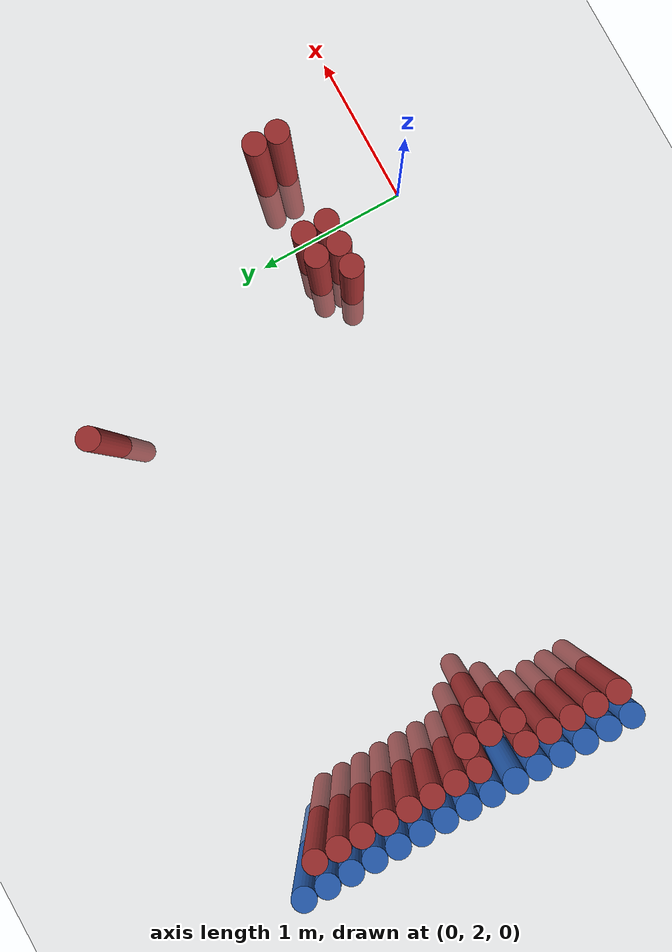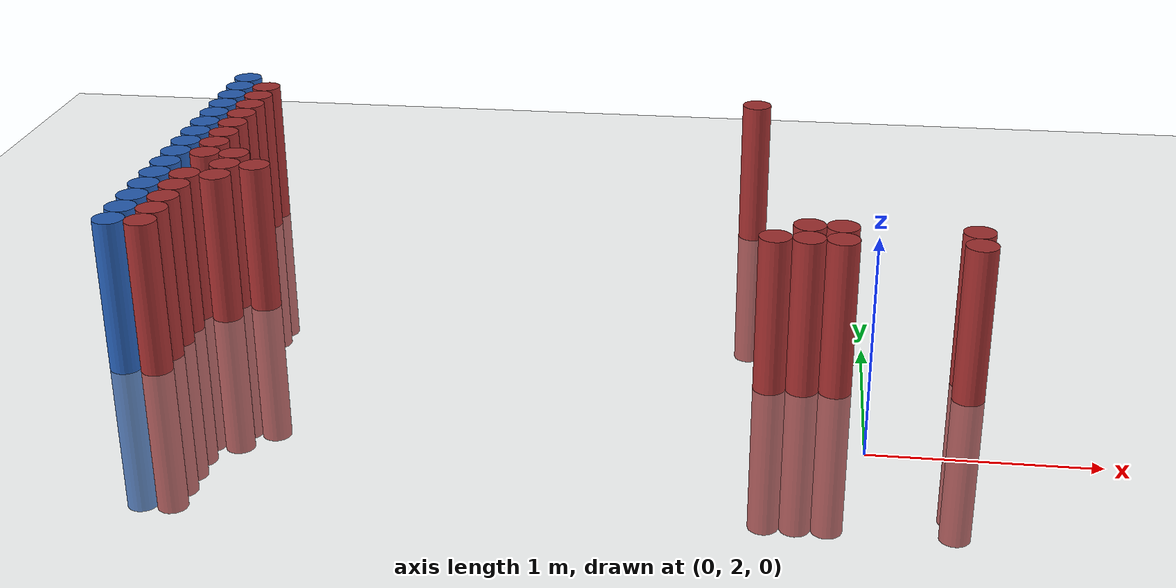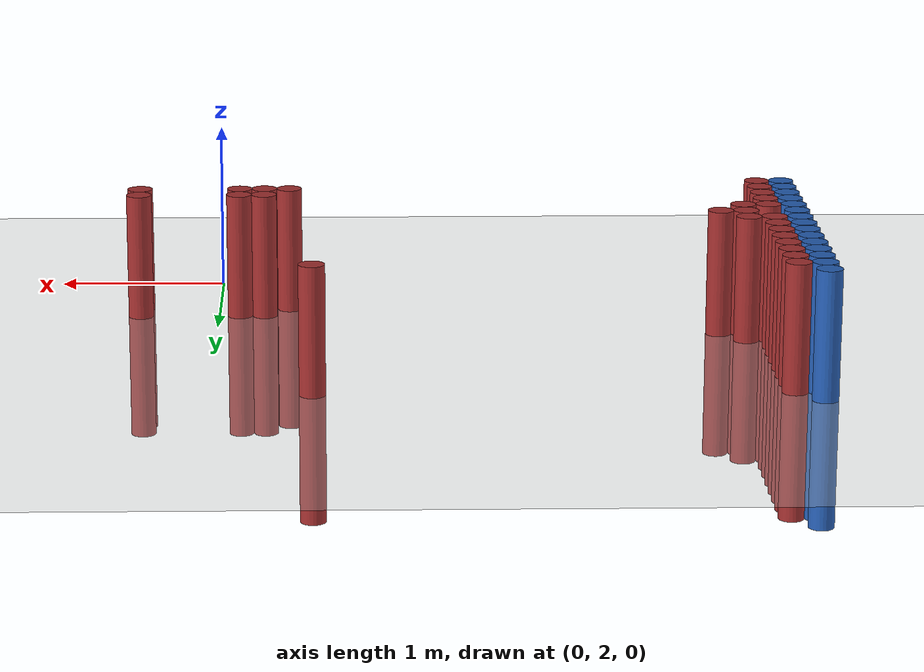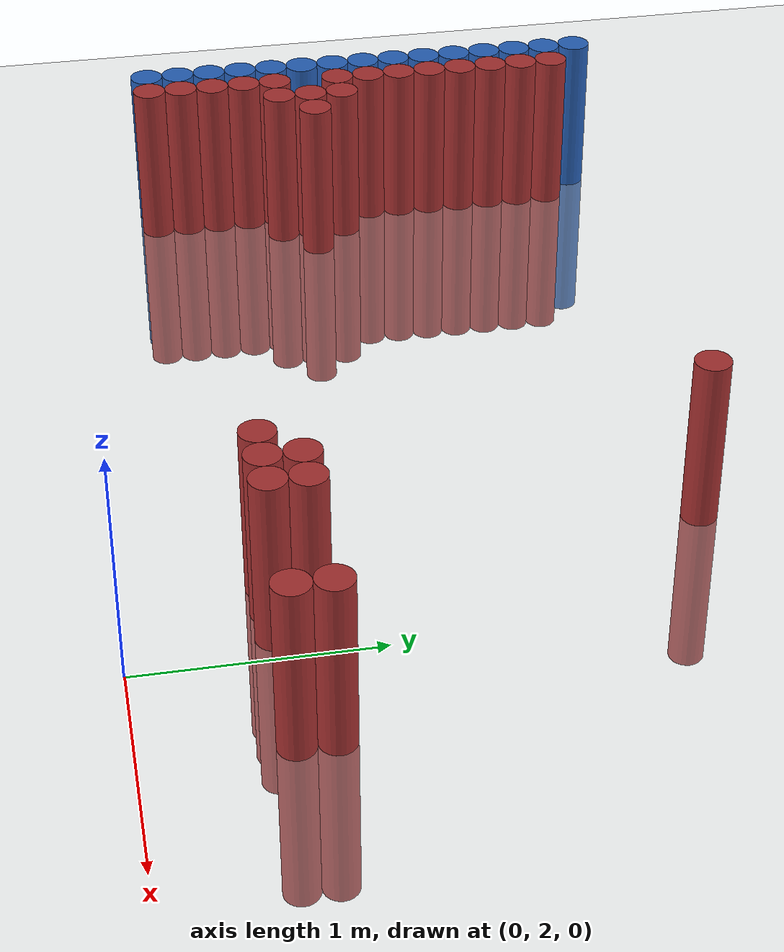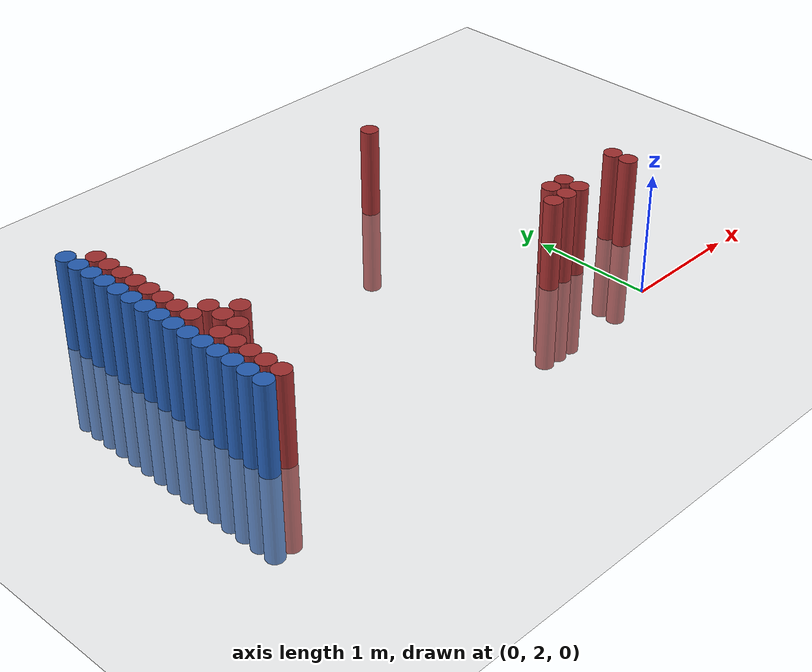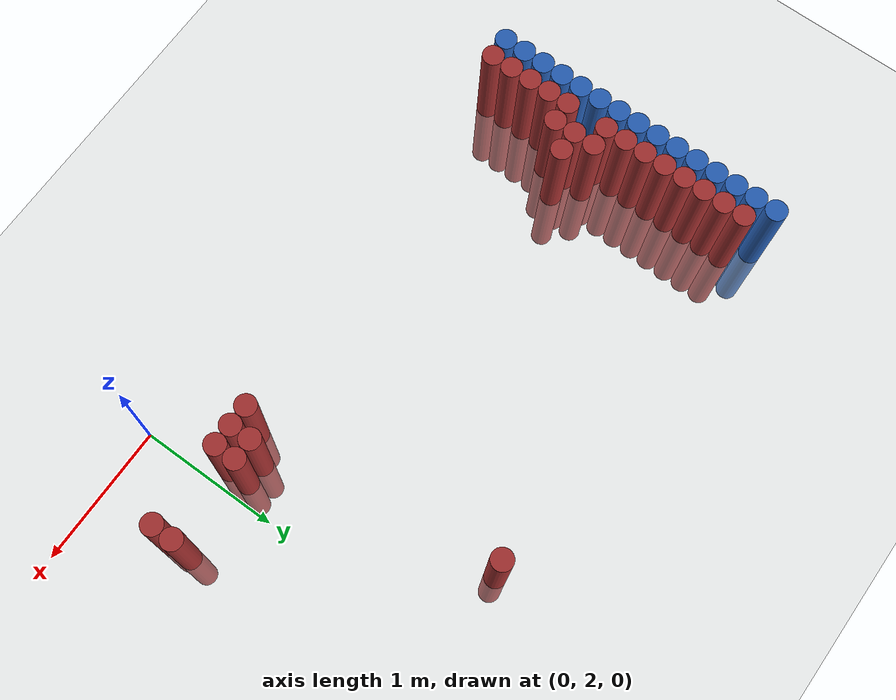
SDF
<sdf version="1.6">
 <world name="default">
  <model name="ground_plane">
   <static>1</static>
   <link name="link">
    <collision name="collision">
     <geometry><plane><normal>0 0 1</normal><size>100 100</size></plane></geometry>
     <surface><friction><ode><mu>100</mu><mu2>50</mu2></ode></friction></surface>
    </collision>
    <visual name="visual">
     <cast_shadows>0</cast_shadows>
     <geometry><plane><normal>0 0 1</normal><size>100 100</size></plane></geometry>
     <material>
      <script><uri>file://media/materials/scripts/gazebo.material</uri><name>Gazebo/Grey</name></script>
     </material>
    </visual>
   </link>
  </model>
  <model name="unit_cylinder_149">
   <static>1</static>
   <pose>-3.425000 2.575000 0.000000 0.000000 0.000000 0.000000</pose>
   <link name="link">
    <inertial>
     <mass>1</mass>
     <inertia><ixx>0.145833</ixx><ixy>0</ixy><ixz>0</ixz><iyy>0.145833</iyy><iyz>0</iyz><izz>0.125</izz></inertia>
    </inertial>
    <collision name="collision">
     <geometry><cylinder><radius>0.075000</radius><length>1.5</length></cylinder></geometry>
    </collision>
    <visual name="visual">
     <geometry><cylinder><radius>0.075000</radius><length>1.5</length></cylinder></geometry>
     <material>
      <ambient>0.152000 0.379000 0.720000 1</ambient>
      <diffuse>0.152000 0.379000 0.720000 1</diffuse>
     </material>
     <material>
      <script><name>Gazebo/Grey</name><uri>file://media/materials/scripts/gazebo.material</uri></script>
     </material>
    </visual>
   </link>
  </model>
  <model name="unit_cylinder_151">
   <static>1</static>
   <pose>-3.425000 2.725000 0.000000 0.000000 0.000000 0.000000</pose>
   <link name="link">
    <inertial>
     <mass>1</mass>
     <inertia><ixx>0.145833</ixx><ixy>0</ixy><ixz>0</ixz><iyy>0.145833</iyy><iyz>0</iyz><izz>0.125</izz></inertia>
    </inertial>
    <collision name="collision">
     <geometry><cylinder><radius>0.075000</radius><length>1.5</length></cylinder></geometry>
    </collision>
    <visual name="visual">
     <geometry><cylinder><radius>0.075000</radius><length>1.5</length></cylinder></geometry>
     <material>
      <ambient>0.152000 0.379000 0.720000 1</ambient>
      <diffuse>0.152000 0.379000 0.720000 1</diffuse>
     </material>
     <material>
      <script><name>Gazebo/Grey</name><uri>file://media/materials/scripts/gazebo.material</uri></script>
     </material>
    </visual>
   </link>
  </model>
  <model name="unit_cylinder_153">
   <static>1</static>
   <pose>-3.425000 2.875000 0.000000 0.000000 0.000000 0.000000</pose>
   <link name="link">
    <inertial>
     <mass>1</mass>
     <inertia><ixx>0.145833</ixx><ixy>0</ixy><ixz>0</ixz><iyy>0.145833</iyy><iyz>0</iyz><izz>0.125</izz></inertia>
    </inertial>
    <collision name="collision">
     <geometry><cylinder><radius>0.075000</radius><length>1.5</length></cylinder></geometry>
    </collision>
    <visual name="visual">
     <geometry><cylinder><radius>0.075000</radius><length>1.5</length></cylinder></geometry>
     <material>
      <ambient>0.152000 0.379000 0.720000 1</ambient>
      <diffuse>0.152000 0.379000 0.720000 1</diffuse>
     </material>
     <material>
      <script><name>Gazebo/Grey</name><uri>file://media/materials/scripts/gazebo.material</uri></script>
     </material>
    </visual>
   </link>
  </model>
  <model name="unit_cylinder_155">
   <static>1</static>
   <pose>-3.425000 3.025000 0.000000 0.000000 0.000000 0.000000</pose>
   <link name="link">
    <inertial>
     <mass>1</mass>
     <inertia><ixx>0.145833</ixx><ixy>0</ixy><ixz>0</ixz><iyy>0.145833</iyy><iyz>0</iyz><izz>0.125</izz></inertia>
    </inertial>
    <collision name="collision">
     <geometry><cylinder><radius>0.075000</radius><length>1.5</length></cylinder></geometry>
    </collision>
    <visual name="visual">
     <geometry><cylinder><radius>0.075000</radius><length>1.5</length></cylinder></geometry>
     <material>
      <ambient>0.152000 0.379000 0.720000 1</ambient>
      <diffuse>0.152000 0.379000 0.720000 1</diffuse>
     </material>
     <material>
      <script><name>Gazebo/Grey</name><uri>file://media/materials/scripts/gazebo.material</uri></script>
     </material>
    </visual>
   </link>
  </model>
  <model name="unit_cylinder_157">
   <static>1</static>
   <pose>-3.425000 3.175000 0.000000 0.000000 0.000000 0.000000</pose>
   <link name="link">
    <inertial>
     <mass>1</mass>
     <inertia><ixx>0.145833</ixx><ixy>0</ixy><ixz>0</ixz><iyy>0.145833</iyy><iyz>0</iyz><izz>0.125</izz></inertia>
    </inertial>
    <collision name="collision">
     <geometry><cylinder><radius>0.075000</radius><length>1.5</length></cylinder></geometry>
    </collision>
    <visual name="visual">
     <geometry><cylinder><radius>0.075000</radius><length>1.5</length></cylinder></geometry>
     <material>
      <ambient>0.152000 0.379000 0.720000 1</ambient>
      <diffuse>0.152000 0.379000 0.720000 1</diffuse>
     </material>
     <material>
      <script><name>Gazebo/Grey</name><uri>file://media/materials/scripts/gazebo.material</uri></script>
     </material>
    </visual>
   </link>
  </model>
  <model name="unit_cylinder_159">
   <static>1</static>
   <pose>-3.425000 3.325000 0.000000 0.000000 0.000000 0.000000</pose>
   <link name="link">
    <inertial>
     <mass>1</mass>
     <inertia><ixx>0.145833</ixx><ixy>0</ixy><ixz>0</ixz><iyy>0.145833</iyy><iyz>0</iyz><izz>0.125</izz></inertia>
    </inertial>
    <collision name="collision">
     <geometry><cylinder><radius>0.075000</radius><length>1.5</length></cylinder></geometry>
    </collision>
    <visual name="visual">
     <geometry><cylinder><radius>0.075000</radius><length>1.5</length></cylinder></geometry>
     <material>
      <ambient>0.152000 0.379000 0.720000 1</ambient>
      <diffuse>0.152000 0.379000 0.720000 1</diffuse>
     </material>
     <material>
      <script><name>Gazebo/Grey</name><uri>file://media/materials/scripts/gazebo.material</uri></script>
     </material>
    </visual>
   </link>
  </model>
  <model name="unit_cylinder_161">
   <static>1</static>
   <pose>-3.425000 3.475000 0.000000 0.000000 0.000000 0.000000</pose>
   <link name="link">
    <inertial>
     <mass>1</mass>
     <inertia><ixx>0.145833</ixx><ixy>0</ixy><ixz>0</ixz><iyy>0.145833</iyy><iyz>0</iyz><izz>0.125</izz></inertia>
    </inertial>
    <collision name="collision">
     <geometry><cylinder><radius>0.075000</radius><length>1.5</length></cylinder></geometry>
    </collision>
    <visual name="visual">
     <geometry><cylinder><radius>0.075000</radius><length>1.5</length></cylinder></geometry>
     <material>
      <ambient>0.152000 0.379000 0.720000 1</ambient>
      <diffuse>0.152000 0.379000 0.720000 1</diffuse>
     </material>
     <material>
      <script><name>Gazebo/Grey</name><uri>file://media/materials/scripts/gazebo.material</uri></script>
     </material>
    </visual>
   </link>
  </model>
  <model name="unit_cylinder_163">
   <static>1</static>
   <pose>-3.425000 3.625000 0.000000 0.000000 0.000000 0.000000</pose>
   <link name="link">
    <inertial>
     <mass>1</mass>
     <inertia><ixx>0.145833</ixx><ixy>0</ixy><ixz>0</ixz><iyy>0.145833</iyy><iyz>0</iyz><izz>0.125</izz></inertia>
    </inertial>
    <collision name="collision">
     <geometry><cylinder><radius>0.075000</radius><length>1.5</length></cylinder></geometry>
    </collision>
    <visual name="visual">
     <geometry><cylinder><radius>0.075000</radius><length>1.5</length></cylinder></geometry>
     <material>
      <ambient>0.152000 0.379000 0.720000 1</ambient>
      <diffuse>0.152000 0.379000 0.720000 1</diffuse>
     </material>
     <material>
      <script><name>Gazebo/Grey</name><uri>file://media/materials/scripts/gazebo.material</uri></script>
     </material>
    </visual>
   </link>
  </model>
  <model name="unit_cylinder_165">
   <static>1</static>
   <pose>-3.425000 3.775000 0.000000 0.000000 0.000000 0.000000</pose>
   <link name="link">
    <inertial>
     <mass>1</mass>
     <inertia><ixx>0.145833</ixx><ixy>0</ixy><ixz>0</ixz><iyy>0.145833</iyy><iyz>0</iyz><izz>0.125</izz></inertia>
    </inertial>
    <collision name="collision">
     <geometry><cylinder><radius>0.075000</radius><length>1.5</length></cylinder></geometry>
    </collision>
    <visual name="visual">
     <geometry><cylinder><radius>0.075000</radius><length>1.5</length></cylinder></geometry>
     <material>
      <ambient>0.152000 0.379000 0.720000 1</ambient>
      <diffuse>0.152000 0.379000 0.720000 1</diffuse>
     </material>
     <material>
      <script><name>Gazebo/Grey</name><uri>file://media/materials/scripts/gazebo.material</uri></script>
     </material>
    </visual>
   </link>
  </model>
  <model name="unit_cylinder_167">
   <static>1</static>
   <pose>-3.425000 3.925000 0.000000 0.000000 0.000000 0.000000</pose>
   <link name="link">
    <inertial>
     <mass>1</mass>
     <inertia><ixx>0.145833</ixx><ixy>0</ixy><ixz>0</ixz><iyy>0.145833</iyy><iyz>0</iyz><izz>0.125</izz></inertia>
    </inertial>
    <collision name="collision">
     <geometry><cylinder><radius>0.075000</radius><length>1.5</length></cylinder></geometry>
    </collision>
    <visual name="visual">
     <geometry><cylinder><radius>0.075000</radius><length>1.5</length></cylinder></geometry>
     <material>
      <ambient>0.152000 0.379000 0.720000 1</ambient>
      <diffuse>0.152000 0.379000 0.720000 1</diffuse>
     </material>
     <material>
      <script><name>Gazebo/Grey</name><uri>file://media/materials/scripts/gazebo.material</uri></script>
     </material>
    </visual>
   </link>
  </model>
  <model name="unit_cylinder_169">
   <static>1</static>
   <pose>-3.425000 4.075000 0.000000 0.000000 0.000000 0.000000</pose>
   <link name="link">
    <inertial>
     <mass>1</mass>
     <inertia><ixx>0.145833</ixx><ixy>0</ixy><ixz>0</ixz><iyy>0.145833</iyy><iyz>0</iyz><izz>0.125</izz></inertia>
    </inertial>
    <collision name="collision">
     <geometry><cylinder><radius>0.075000</radius><length>1.5</length></cylinder></geometry>
    </collision>
    <visual name="visual">
     <geometry><cylinder><radius>0.075000</radius><length>1.5</length></cylinder></geometry>
     <material>
      <ambient>0.152000 0.379000 0.720000 1</ambient>
      <diffuse>0.152000 0.379000 0.720000 1</diffuse>
     </material>
     <material>
      <script><name>Gazebo/Grey</name><uri>file://media/materials/scripts/gazebo.material</uri></script>
     </material>
    </visual>
   </link>
  </model>
  <model name="unit_cylinder_171">
   <static>1</static>
   <pose>-3.425000 4.225000 0.000000 0.000000 0.000000 0.000000</pose>
   <link name="link">
    <inertial>
     <mass>1</mass>
     <inertia><ixx>0.145833</ixx><ixy>0</ixy><ixz>0</ixz><iyy>0.145833</iyy><iyz>0</iyz><izz>0.125</izz></inertia>
    </inertial>
    <collision name="collision">
     <geometry><cylinder><radius>0.075000</radius><length>1.5</length></cylinder></geometry>
    </collision>
    <visual name="visual">
     <geometry><cylinder><radius>0.075000</radius><length>1.5</length></cylinder></geometry>
     <material>
      <ambient>0.152000 0.379000 0.720000 1</ambient>
      <diffuse>0.152000 0.379000 0.720000 1</diffuse>
     </material>
     <material>
      <script><name>Gazebo/Grey</name><uri>file://media/materials/scripts/gazebo.material</uri></script>
     </material>
    </visual>
   </link>
  </model>
  <model name="unit_cylinder_173">
   <static>1</static>
   <pose>-3.425000 4.375000 0.000000 0.000000 0.000000 0.000000</pose>
   <link name="link">
    <inertial>
     <mass>1</mass>
     <inertia><ixx>0.145833</ixx><ixy>0</ixy><ixz>0</ixz><iyy>0.145833</iyy><iyz>0</iyz><izz>0.125</izz></inertia>
    </inertial>
    <collision name="collision">
     <geometry><cylinder><radius>0.075000</radius><length>1.5</length></cylinder></geometry>
    </collision>
    <visual name="visual">
     <geometry><cylinder><radius>0.075000</radius><length>1.5</length></cylinder></geometry>
     <material>
      <ambient>0.152000 0.379000 0.720000 1</ambient>
      <diffuse>0.152000 0.379000 0.720000 1</diffuse>
     </material>
     <material>
      <script><name>Gazebo/Grey</name><uri>file://media/materials/scripts/gazebo.material</uri></script>
     </material>
    </visual>
   </link>
  </model>
  <model name="unit_cylinder_175">
   <static>1</static>
   <pose>-3.425000 4.525000 0.000000 0.000000 0.000000 0.000000</pose>
   <link name="link">
    <inertial>
     <mass>1</mass>
     <inertia><ixx>0.145833</ixx><ixy>0</ixy><ixz>0</ixz><iyy>0.145833</iyy><iyz>0</iyz><izz>0.125</izz></inertia>
    </inertial>
    <collision name="collision">
     <geometry><cylinder><radius>0.075000</radius><length>1.5</length></cylinder></geometry>
    </collision>
    <visual name="visual">
     <geometry><cylinder><radius>0.075000</radius><length>1.5</length></cylinder></geometry>
     <material>
      <ambient>0.152000 0.379000 0.720000 1</ambient>
      <diffuse>0.152000 0.379000 0.720000 1</diffuse>
     </material>
     <material>
      <script><name>Gazebo/Grey</name><uri>file://media/materials/scripts/gazebo.material</uri></script>
     </material>
    </visual>
   </link>
  </model>
  <model name="unit_cylinder_237">
   <static>1</static>
   <pose>-3.425000 2.425000 0.000000 0.000000 0.000000 0.000000</pose>
   <link name="link">
    <inertial>
     <mass>1</mass>
     <inertia><ixx>0.145833</ixx><ixy>0</ixy><ixz>0</ixz><iyy>0.145833</iyy><iyz>0</iyz><izz>0.125</izz></inertia>
    </inertial>
    <collision name="collision">
     <geometry><cylinder><radius>0.075000</radius><length>1.5</length></cylinder></geometry>
    </collision>
    <visual name="visual">
     <geometry><cylinder><radius>0.075000</radius><length>1.5</length></cylinder></geometry>
     <material>
      <ambient>0.152000 0.379000 0.720000 1</ambient>
      <diffuse>0.152000 0.379000 0.720000 1</diffuse>
     </material>
     <material>
      <script><name>Gazebo/Grey</name><uri>file://media/materials/scripts/gazebo.material</uri></script>
     </material>
    </visual>
   </link>
  </model>
  <model name="unit_cylinder_238">
   <static>1</static>
   <pose>-3.425000 2.575000 0.000000 0.000000 0.000000 0.000000</pose>
   <link name="link">
    <inertial>
     <mass>1</mass>
     <inertia><ixx>0.145833</ixx><ixy>0</ixy><ixz>0</ixz><iyy>0.145833</iyy><iyz>0</iyz><izz>0.125</izz></inertia>
    </inertial>
    <collision name="collision">
     <geometry><cylinder><radius>0.075000</radius><length>1.5</length></cylinder></geometry>
    </collision>
    <visual name="visual">
     <geometry><cylinder><radius>0.075000</radius><length>1.5</length></cylinder></geometry>
     <material>
      <ambient>0.152000 0.379000 0.720000 1</ambient>
      <diffuse>0.152000 0.379000 0.720000 1</diffuse>
     </material>
     <material>
      <script><name>Gazebo/Grey</name><uri>file://media/materials/scripts/gazebo.material</uri></script>
     </material>
    </visual>
   </link>
  </model>
  <model name="unit_cylinder_239">
   <static>1</static>
   <pose>-3.425000 2.725000 0.000000 0.000000 0.000000 0.000000</pose>
   <link name="link">
    <inertial>
     <mass>1</mass>
     <inertia><ixx>0.145833</ixx><ixy>0</ixy><ixz>0</ixz><iyy>0.145833</iyy><iyz>0</iyz><izz>0.125</izz></inertia>
    </inertial>
    <collision name="collision">
     <geometry><cylinder><radius>0.075000</radius><length>1.5</length></cylinder></geometry>
    </collision>
    <visual name="visual">
     <geometry><cylinder><radius>0.075000</radius><length>1.5</length></cylinder></geometry>
     <material>
      <ambient>0.152000 0.379000 0.720000 1</ambient>
      <diffuse>0.152000 0.379000 0.720000 1</diffuse>
     </material>
     <material>
      <script><name>Gazebo/Grey</name><uri>file://media/materials/scripts/gazebo.material</uri></script>
     </material>
    </visual>
   </link>
  </model>
  <model name="unit_cylinder_240">
   <static>1</static>
   <pose>-3.425000 2.875000 0.000000 0.000000 0.000000 0.000000</pose>
   <link name="link">
    <inertial>
     <mass>1</mass>
     <inertia><ixx>0.145833</ixx><ixy>0</ixy><ixz>0</ixz><iyy>0.145833</iyy><iyz>0</iyz><izz>0.125</izz></inertia>
    </inertial>
    <collision name="collision">
     <geometry><cylinder><radius>0.075000</radius><length>1.5</length></cylinder></geometry>
    </collision>
    <visual name="visual">
     <geometry><cylinder><radius>0.075000</radius><length>1.5</length></cylinder></geometry>
     <material>
      <ambient>0.152000 0.379000 0.720000 1</ambient>
      <diffuse>0.152000 0.379000 0.720000 1</diffuse>
     </material>
     <material>
      <script><name>Gazebo/Grey</name><uri>file://media/materials/scripts/gazebo.material</uri></script>
     </material>
    </visual>
   </link>
  </model>
  <model name="unit_cylinder_241">
   <static>1</static>
   <pose>-3.425000 3.025000 0.000000 0.000000 0.000000 0.000000</pose>
   <link name="link">
    <inertial>
     <mass>1</mass>
     <inertia><ixx>0.145833</ixx><ixy>0</ixy><ixz>0</ixz><iyy>0.145833</iyy><iyz>0</iyz><izz>0.125</izz></inertia>
    </inertial>
    <collision name="collision">
     <geometry><cylinder><radius>0.075000</radius><length>1.5</length></cylinder></geometry>
    </collision>
    <visual name="visual">
     <geometry><cylinder><radius>0.075000</radius><length>1.5</length></cylinder></geometry>
     <material>
      <ambient>0.152000 0.379000 0.720000 1</ambient>
      <diffuse>0.152000 0.379000 0.720000 1</diffuse>
     </material>
     <material>
      <script><name>Gazebo/Grey</name><uri>file://media/materials/scripts/gazebo.material</uri></script>
     </material>
    </visual>
   </link>
  </model>
  <model name="unit_cylinder_242">
   <static>1</static>
   <pose>-3.425000 3.175000 0.000000 0.000000 0.000000 0.000000</pose>
   <link name="link">
    <inertial>
     <mass>1</mass>
     <inertia><ixx>0.145833</ixx><ixy>0</ixy><ixz>0</ixz><iyy>0.145833</iyy><iyz>0</iyz><izz>0.125</izz></inertia>
    </inertial>
    <collision name="collision">
     <geometry><cylinder><radius>0.075000</radius><length>1.5</length></cylinder></geometry>
    </collision>
    <visual name="visual">
     <geometry><cylinder><radius>0.075000</radius><length>1.5</length></cylinder></geometry>
     <material>
      <ambient>0.152000 0.379000 0.720000 1</ambient>
      <diffuse>0.152000 0.379000 0.720000 1</diffuse>
     </material>
     <material>
      <script><name>Gazebo/Grey</name><uri>file://media/materials/scripts/gazebo.material</uri></script>
     </material>
    </visual>
   </link>
  </model>
  <model name="unit_cylinder_243">
   <static>1</static>
   <pose>-3.425000 3.325000 0.000000 0.000000 0.000000 0.000000</pose>
   <link name="link">
    <inertial>
     <mass>1</mass>
     <inertia><ixx>0.145833</ixx><ixy>0</ixy><ixz>0</ixz><iyy>0.145833</iyy><iyz>0</iyz><izz>0.125</izz></inertia>
    </inertial>
    <collision name="collision">
     <geometry><cylinder><radius>0.075000</radius><length>1.5</length></cylinder></geometry>
    </collision>
    <visual name="visual">
     <geometry><cylinder><radius>0.075000</radius><length>1.5</length></cylinder></geometry>
     <material>
      <ambient>0.152000 0.379000 0.720000 1</ambient>
      <diffuse>0.152000 0.379000 0.720000 1</diffuse>
     </material>
     <material>
      <script><name>Gazebo/Grey</name><uri>file://media/materials/scripts/gazebo.material</uri></script>
     </material>
    </visual>
   </link>
  </model>
  <model name="unit_cylinder_244">
   <static>1</static>
   <pose>-3.425000 3.475000 0.000000 0.000000 0.000000 0.000000</pose>
   <link name="link">
    <inertial>
     <mass>1</mass>
     <inertia><ixx>0.145833</ixx><ixy>0</ixy><ixz>0</ixz><iyy>0.145833</iyy><iyz>0</iyz><izz>0.125</izz></inertia>
    </inertial>
    <collision name="collision">
     <geometry><cylinder><radius>0.075000</radius><length>1.5</length></cylinder></geometry>
    </collision>
    <visual name="visual">
     <geometry><cylinder><radius>0.075000</radius><length>1.5</length></cylinder></geometry>
     <material>
      <ambient>0.152000 0.379000 0.720000 1</ambient>
      <diffuse>0.152000 0.379000 0.720000 1</diffuse>
     </material>
     <material>
      <script><name>Gazebo/Grey</name><uri>file://media/materials/scripts/gazebo.material</uri></script>
     </material>
    </visual>
   </link>
  </model>
  <model name="unit_cylinder_245">
   <static>1</static>
   <pose>-3.425000 3.625000 0.000000 0.000000 0.000000 0.000000</pose>
   <link name="link">
    <inertial>
     <mass>1</mass>
     <inertia><ixx>0.145833</ixx><ixy>0</ixy><ixz>0</ixz><iyy>0.145833</iyy><iyz>0</iyz><izz>0.125</izz></inertia>
    </inertial>
    <collision name="collision">
     <geometry><cylinder><radius>0.075000</radius><length>1.5</length></cylinder></geometry>
    </collision>
    <visual name="visual">
     <geometry><cylinder><radius>0.075000</radius><length>1.5</length></cylinder></geometry>
     <material>
      <ambient>0.152000 0.379000 0.720000 1</ambient>
      <diffuse>0.152000 0.379000 0.720000 1</diffuse>
     </material>
     <material>
      <script><name>Gazebo/Grey</name><uri>file://media/materials/scripts/gazebo.material</uri></script>
     </material>
    </visual>
   </link>
  </model>
  <model name="unit_cylinder_246">
   <static>1</static>
   <pose>-3.425000 3.775000 0.000000 0.000000 0.000000 0.000000</pose>
   <link name="link">
    <inertial>
     <mass>1</mass>
     <inertia><ixx>0.145833</ixx><ixy>0</ixy><ixz>0</ixz><iyy>0.145833</iyy><iyz>0</iyz><izz>0.125</izz></inertia>
    </inertial>
    <collision name="collision">
     <geometry><cylinder><radius>0.075000</radius><length>1.5</length></cylinder></geometry>
    </collision>
    <visual name="visual">
     <geometry><cylinder><radius>0.075000</radius><length>1.5</length></cylinder></geometry>
     <material>
      <ambient>0.152000 0.379000 0.720000 1</ambient>
      <diffuse>0.152000 0.379000 0.720000 1</diffuse>
     </material>
     <material>
      <script><name>Gazebo/Grey</name><uri>file://media/materials/scripts/gazebo.material</uri></script>
     </material>
    </visual>
   </link>
  </model>
  <model name="unit_cylinder_247">
   <static>1</static>
   <pose>-3.425000 3.925000 0.000000 0.000000 0.000000 0.000000</pose>
   <link name="link">
    <inertial>
     <mass>1</mass>
     <inertia><ixx>0.145833</ixx><ixy>0</ixy><ixz>0</ixz><iyy>0.145833</iyy><iyz>0</iyz><izz>0.125</izz></inertia>
    </inertial>
    <collision name="collision">
     <geometry><cylinder><radius>0.075000</radius><length>1.5</length></cylinder></geometry>
    </collision>
    <visual name="visual">
     <geometry><cylinder><radius>0.075000</radius><length>1.5</length></cylinder></geometry>
     <material>
      <ambient>0.152000 0.379000 0.720000 1</ambient>
      <diffuse>0.152000 0.379000 0.720000 1</diffuse>
     </material>
     <material>
      <script><name>Gazebo/Grey</name><uri>file://media/materials/scripts/gazebo.material</uri></script>
     </material>
    </visual>
   </link>
  </model>
  <model name="unit_cylinder_248">
   <static>1</static>
   <pose>-3.425000 4.075000 0.000000 0.000000 0.000000 0.000000</pose>
   <link name="link">
    <inertial>
     <mass>1</mass>
     <inertia><ixx>0.145833</ixx><ixy>0</ixy><ixz>0</ixz><iyy>0.145833</iyy><iyz>0</iyz><izz>0.125</izz></inertia>
    </inertial>
    <collision name="collision">
     <geometry><cylinder><radius>0.075000</radius><length>1.5</length></cylinder></geometry>
    </collision>
    <visual name="visual">
     <geometry><cylinder><radius>0.075000</radius><length>1.5</length></cylinder></geometry>
     <material>
      <ambient>0.152000 0.379000 0.720000 1</ambient>
      <diffuse>0.152000 0.379000 0.720000 1</diffuse>
     </material>
     <material>
      <script><name>Gazebo/Grey</name><uri>file://media/materials/scripts/gazebo.material</uri></script>
     </material>
    </visual>
   </link>
  </model>
  <model name="unit_cylinder_249">
   <static>1</static>
   <pose>-3.425000 4.225000 0.000000 0.000000 0.000000 0.000000</pose>
   <link name="link">
    <inertial>
     <mass>1</mass>
     <inertia><ixx>0.145833</ixx><ixy>0</ixy><ixz>0</ixz><iyy>0.145833</iyy><iyz>0</iyz><izz>0.125</izz></inertia>
    </inertial>
    <collision name="collision">
     <geometry><cylinder><radius>0.075000</radius><length>1.5</length></cylinder></geometry>
    </collision>
    <visual name="visual">
     <geometry><cylinder><radius>0.075000</radius><length>1.5</length></cylinder></geometry>
     <material>
      <ambient>0.152000 0.379000 0.720000 1</ambient>
      <diffuse>0.152000 0.379000 0.720000 1</diffuse>
     </material>
     <material>
      <script><name>Gazebo/Grey</name><uri>file://media/materials/scripts/gazebo.material</uri></script>
     </material>
    </visual>
   </link>
  </model>
  <model name="unit_cylinder_250">
   <static>1</static>
   <pose>-3.425000 4.375000 0.000000 0.000000 0.000000 0.000000</pose>
   <link name="link">
    <inertial>
     <mass>1</mass>
     <inertia><ixx>0.145833</ixx><ixy>0</ixy><ixz>0</ixz><iyy>0.145833</iyy><iyz>0</iyz><izz>0.125</izz></inertia>
    </inertial>
    <collision name="collision">
     <geometry><cylinder><radius>0.075000</radius><length>1.5</length></cylinder></geometry>
    </collision>
    <visual name="visual">
     <geometry><cylinder><radius>0.075000</radius><length>1.5</length></cylinder></geometry>
     <material>
      <ambient>0.152000 0.379000 0.720000 1</ambient>
      <diffuse>0.152000 0.379000 0.720000 1</diffuse>
     </material>
     <material>
      <script><name>Gazebo/Grey</name><uri>file://media/materials/scripts/gazebo.material</uri></script>
     </material>
    </visual>
   </link>
  </model>
  <model name="unit_cylinder_270">
   <static>1</static>
   <pose>-3.275000 2.425000 0.000000 0.000000 0.000000 0.000000</pose>
   <link name="link">
    <inertial>
     <mass>1</mass>
     <inertia><ixx>0.145833</ixx><ixy>0</ixy><ixz>0</ixz><iyy>0.145833</iyy><iyz>0</iyz><izz>0.125</izz></inertia>
    </inertial>
    <collision name="collision">
     <geometry><cylinder><radius>0.075000</radius><length>1.5</length></cylinder></geometry>
    </collision>
    <visual name="visual">
     <geometry><cylinder><radius>0.075000</radius><length>1.5</length></cylinder></geometry>
     <material>
      <ambient>0.648000 0.192000 0.192000 1</ambient>
      <diffuse>0.648000 0.192000 0.192000 1</diffuse>
     </material>
     <material>
      <script><name>Gazebo/Grey</name><uri>file://media/materials/scripts/gazebo.material</uri></script>
     </material>
    </visual>
   </link>
  </model>
  <model name="unit_cylinder_271">
   <static>1</static>
   <pose>-3.275000 2.575000 0.000000 0.000000 0.000000 0.000000</pose>
   <link name="link">
    <inertial>
     <mass>1</mass>
     <inertia><ixx>0.145833</ixx><ixy>0</ixy><ixz>0</ixz><iyy>0.145833</iyy><iyz>0</iyz><izz>0.125</izz></inertia>
    </inertial>
    <collision name="collision">
     <geometry><cylinder><radius>0.075000</radius><length>1.5</length></cylinder></geometry>
    </collision>
    <visual name="visual">
     <geometry><cylinder><radius>0.075000</radius><length>1.5</length></cylinder></geometry>
     <material>
      <ambient>0.648000 0.192000 0.192000 1</ambient>
      <diffuse>0.648000 0.192000 0.192000 1</diffuse>
     </material>
     <material>
      <script><name>Gazebo/Grey</name><uri>file://media/materials/scripts/gazebo.material</uri></script>
     </material>
    </visual>
   </link>
  </model>
  <model name="unit_cylinder_272">
   <static>1</static>
   <pose>-3.275000 2.725000 0.000000 0.000000 0.000000 0.000000</pose>
   <link name="link">
    <inertial>
     <mass>1</mass>
     <inertia><ixx>0.145833</ixx><ixy>0</ixy><ixz>0</ixz><iyy>0.145833</iyy><iyz>0</iyz><izz>0.125</izz></inertia>
    </inertial>
    <collision name="collision">
     <geometry><cylinder><radius>0.075000</radius><length>1.5</length></cylinder></geometry>
    </collision>
    <visual name="visual">
     <geometry><cylinder><radius>0.075000</radius><length>1.5</length></cylinder></geometry>
     <material>
      <ambient>0.648000 0.192000 0.192000 1</ambient>
      <diffuse>0.648000 0.192000 0.192000 1</diffuse>
     </material>
     <material>
      <script><name>Gazebo/Grey</name><uri>file://media/materials/scripts/gazebo.material</uri></script>
     </material>
    </visual>
   </link>
  </model>
  <model name="unit_cylinder_273">
   <static>1</static>
   <pose>-3.275000 2.875000 0.000000 0.000000 0.000000 0.000000</pose>
   <link name="link">
    <inertial>
     <mass>1</mass>
     <inertia><ixx>0.145833</ixx><ixy>0</ixy><ixz>0</ixz><iyy>0.145833</iyy><iyz>0</iyz><izz>0.125</izz></inertia>
    </inertial>
    <collision name="collision">
     <geometry><cylinder><radius>0.075000</radius><length>1.5</length></cylinder></geometry>
    </collision>
    <visual name="visual">
     <geometry><cylinder><radius>0.075000</radius><length>1.5</length></cylinder></geometry>
     <material>
      <ambient>0.648000 0.192000 0.192000 1</ambient>
      <diffuse>0.648000 0.192000 0.192000 1</diffuse>
     </material>
     <material>
      <script><name>Gazebo/Grey</name><uri>file://media/materials/scripts/gazebo.material</uri></script>
     </material>
    </visual>
   </link>
  </model>
  <model name="unit_cylinder_274">
   <static>1</static>
   <pose>-3.275000 3.025000 0.000000 0.000000 0.000000 0.000000</pose>
   <link name="link">
    <inertial>
     <mass>1</mass>
     <inertia><ixx>0.145833</ixx><ixy>0</ixy><ixz>0</ixz><iyy>0.145833</iyy><iyz>0</iyz><izz>0.125</izz></inertia>
    </inertial>
    <collision name="collision">
     <geometry><cylinder><radius>0.075000</radius><length>1.5</length></cylinder></geometry>
    </collision>
    <visual name="visual">
     <geometry><cylinder><radius>0.075000</radius><length>1.5</length></cylinder></geometry>
     <material>
      <ambient>0.648000 0.192000 0.192000 1</ambient>
      <diffuse>0.648000 0.192000 0.192000 1</diffuse>
     </material>
     <material>
      <script><name>Gazebo/Grey</name><uri>file://media/materials/scripts/gazebo.material</uri></script>
     </material>
    </visual>
   </link>
  </model>
  <model name="unit_cylinder_275">
   <static>1</static>
   <pose>-3.275000 3.325000 0.000000 0.000000 0.000000 0.000000</pose>
   <link name="link">
    <inertial>
     <mass>1</mass>
     <inertia><ixx>0.145833</ixx><ixy>0</ixy><ixz>0</ixz><iyy>0.145833</iyy><iyz>0</iyz><izz>0.125</izz></inertia>
    </inertial>
    <collision name="collision">
     <geometry><cylinder><radius>0.075000</radius><length>1.5</length></cylinder></geometry>
    </collision>
    <visual name="visual">
     <geometry><cylinder><radius>0.075000</radius><length>1.5</length></cylinder></geometry>
     <material>
      <ambient>0.648000 0.192000 0.192000 1</ambient>
      <diffuse>0.648000 0.192000 0.192000 1</diffuse>
     </material>
     <material>
      <script><name>Gazebo/Grey</name><uri>file://media/materials/scripts/gazebo.material</uri></script>
     </material>
    </visual>
   </link>
  </model>
  <model name="unit_cylinder_276">
   <static>1</static>
   <pose>-3.275000 3.475000 0.000000 0.000000 0.000000 0.000000</pose>
   <link name="link">
    <inertial>
     <mass>1</mass>
     <inertia><ixx>0.145833</ixx><ixy>0</ixy><ixz>0</ixz><iyy>0.145833</iyy><iyz>0</iyz><izz>0.125</izz></inertia>
    </inertial>
    <collision name="collision">
     <geometry><cylinder><radius>0.075000</radius><length>1.5</length></cylinder></geometry>
    </collision>
    <visual name="visual">
     <geometry><cylinder><radius>0.075000</radius><length>1.5</length></cylinder></geometry>
     <material>
      <ambient>0.648000 0.192000 0.192000 1</ambient>
      <diffuse>0.648000 0.192000 0.192000 1</diffuse>
     </material>
     <material>
      <script><name>Gazebo/Grey</name><uri>file://media/materials/scripts/gazebo.material</uri></script>
     </material>
    </visual>
   </link>
  </model>
  <model name="unit_cylinder_277">
   <static>1</static>
   <pose>-3.275000 3.625000 0.000000 0.000000 0.000000 0.000000</pose>
   <link name="link">
    <inertial>
     <mass>1</mass>
     <inertia><ixx>0.145833</ixx><ixy>0</ixy><ixz>0</ixz><iyy>0.145833</iyy><iyz>0</iyz><izz>0.125</izz></inertia>
    </inertial>
    <collision name="collision">
     <geometry><cylinder><radius>0.075000</radius><length>1.5</length></cylinder></geometry>
    </collision>
    <visual name="visual">
     <geometry><cylinder><radius>0.075000</radius><length>1.5</length></cylinder></geometry>
     <material>
      <ambient>0.648000 0.192000 0.192000 1</ambient>
      <diffuse>0.648000 0.192000 0.192000 1</diffuse>
     </material>
     <material>
      <script><name>Gazebo/Grey</name><uri>file://media/materials/scripts/gazebo.material</uri></script>
     </material>
    </visual>
   </link>
  </model>
  <model name="unit_cylinder_278">
   <static>1</static>
   <pose>-3.275000 3.775000 0.000000 0.000000 0.000000 0.000000</pose>
   <link name="link">
    <inertial>
     <mass>1</mass>
     <inertia><ixx>0.145833</ixx><ixy>0</ixy><ixz>0</ixz><iyy>0.145833</iyy><iyz>0</iyz><izz>0.125</izz></inertia>
    </inertial>
    <collision name="collision">
     <geometry><cylinder><radius>0.075000</radius><length>1.5</length></cylinder></geometry>
    </collision>
    <visual name="visual">
     <geometry><cylinder><radius>0.075000</radius><length>1.5</length></cylinder></geometry>
     <material>
      <ambient>0.648000 0.192000 0.192000 1</ambient>
      <diffuse>0.648000 0.192000 0.192000 1</diffuse>
     </material>
     <material>
      <script><name>Gazebo/Grey</name><uri>file://media/materials/scripts/gazebo.material</uri></script>
     </material>
    </visual>
   </link>
  </model>
  <model name="unit_cylinder_279">
   <static>1</static>
   <pose>-3.275000 3.925000 0.000000 0.000000 0.000000 0.000000</pose>
   <link name="link">
    <inertial>
     <mass>1</mass>
     <inertia><ixx>0.145833</ixx><ixy>0</ixy><ixz>0</ixz><iyy>0.145833</iyy><iyz>0</iyz><izz>0.125</izz></inertia>
    </inertial>
    <collision name="collision">
     <geometry><cylinder><radius>0.075000</radius><length>1.5</length></cylinder></geometry>
    </collision>
    <visual name="visual">
     <geometry><cylinder><radius>0.075000</radius><length>1.5</length></cylinder></geometry>
     <material>
      <ambient>0.648000 0.192000 0.192000 1</ambient>
      <diffuse>0.648000 0.192000 0.192000 1</diffuse>
     </material>
     <material>
      <script><name>Gazebo/Grey</name><uri>file://media/materials/scripts/gazebo.material</uri></script>
     </material>
    </visual>
   </link>
  </model>
  <model name="unit_cylinder_280">
   <static>1</static>
   <pose>-3.275000 4.075000 0.000000 0.000000 0.000000 0.000000</pose>
   <link name="link">
    <inertial>
     <mass>1</mass>
     <inertia><ixx>0.145833</ixx><ixy>0</ixy><ixz>0</ixz><iyy>0.145833</iyy><iyz>0</iyz><izz>0.125</izz></inertia>
    </inertial>
    <collision name="collision">
     <geometry><cylinder><radius>0.075000</radius><length>1.5</length></cylinder></geometry>
    </collision>
    <visual name="visual">
     <geometry><cylinder><radius>0.075000</radius><length>1.5</length></cylinder></geometry>
     <material>
      <ambient>0.648000 0.192000 0.192000 1</ambient>
      <diffuse>0.648000 0.192000 0.192000 1</diffuse>
     </material>
     <material>
      <script><name>Gazebo/Grey</name><uri>file://media/materials/scripts/gazebo.material</uri></script>
     </material>
    </visual>
   </link>
  </model>
  <model name="unit_cylinder_281">
   <static>1</static>
   <pose>-3.275000 4.225000 0.000000 0.000000 0.000000 0.000000</pose>
   <link name="link">
    <inertial>
     <mass>1</mass>
     <inertia><ixx>0.145833</ixx><ixy>0</ixy><ixz>0</ixz><iyy>0.145833</iyy><iyz>0</iyz><izz>0.125</izz></inertia>
    </inertial>
    <collision name="collision">
     <geometry><cylinder><radius>0.075000</radius><length>1.5</length></cylinder></geometry>
    </collision>
    <visual name="visual">
     <geometry><cylinder><radius>0.075000</radius><length>1.5</length></cylinder></geometry>
     <material>
      <ambient>0.648000 0.192000 0.192000 1</ambient>
      <diffuse>0.648000 0.192000 0.192000 1</diffuse>
     </material>
     <material>
      <script><name>Gazebo/Grey</name><uri>file://media/materials/scripts/gazebo.material</uri></script>
     </material>
    </visual>
   </link>
  </model>
  <model name="unit_cylinder_282">
   <static>1</static>
   <pose>-3.275000 4.375000 0.000000 0.000000 0.000000 0.000000</pose>
   <link name="link">
    <inertial>
     <mass>1</mass>
     <inertia><ixx>0.145833</ixx><ixy>0</ixy><ixz>0</ixz><iyy>0.145833</iyy><iyz>0</iyz><izz>0.125</izz></inertia>
    </inertial>
    <collision name="collision">
     <geometry><cylinder><radius>0.075000</radius><length>1.5</length></cylinder></geometry>
    </collision>
    <visual name="visual">
     <geometry><cylinder><radius>0.075000</radius><length>1.5</length></cylinder></geometry>
     <material>
      <ambient>0.648000 0.192000 0.192000 1</ambient>
      <diffuse>0.648000 0.192000 0.192000 1</diffuse>
     </material>
     <material>
      <script><name>Gazebo/Grey</name><uri>file://media/materials/scripts/gazebo.material</uri></script>
     </material>
    </visual>
   </link>
  </model>
  <model name="unit_cylinder_292">
   <static>1</static>
   <pose>-3.125000 3.025000 0.000000 0.000000 0.000000 0.000000</pose>
   <link name="link">
    <inertial>
     <mass>1</mass>
     <inertia><ixx>0.145833</ixx><ixy>0</ixy><ixz>0</ixz><iyy>0.145833</iyy><iyz>0</iyz><izz>0.125</izz></inertia>
    </inertial>
    <collision name="collision">
     <geometry><cylinder><radius>0.075000</radius><length>1.5</length></cylinder></geometry>
    </collision>
    <visual name="visual">
     <geometry><cylinder><radius>0.075000</radius><length>1.5</length></cylinder></geometry>
     <material>
      <ambient>0.648000 0.192000 0.192000 1</ambient>
      <diffuse>0.648000 0.192000 0.192000 1</diffuse>
     </material>
     <material>
      <script><name>Gazebo/Grey</name><uri>file://media/materials/scripts/gazebo.material</uri></script>
     </material>
    </visual>
   </link>
  </model>
  <model name="unit_cylinder_293">
   <static>1</static>
   <pose>-3.125000 3.175000 0.000000 0.000000 0.000000 0.000000</pose>
   <link name="link">
    <inertial>
     <mass>1</mass>
     <inertia><ixx>0.145833</ixx><ixy>0</ixy><ixz>0</ixz><iyy>0.145833</iyy><iyz>0</iyz><izz>0.125</izz></inertia>
    </inertial>
    <collision name="collision">
     <geometry><cylinder><radius>0.075000</radius><length>1.5</length></cylinder></geometry>
    </collision>
    <visual name="visual">
     <geometry><cylinder><radius>0.075000</radius><length>1.5</length></cylinder></geometry>
     <material>
      <ambient>0.648000 0.192000 0.192000 1</ambient>
      <diffuse>0.648000 0.192000 0.192000 1</diffuse>
     </material>
     <material>
      <script><name>Gazebo/Grey</name><uri>file://media/materials/scripts/gazebo.material</uri></script>
     </material>
    </visual>
   </link>
  </model>
  <model name="unit_cylinder_294">
   <static>1</static>
   <pose>-3.125000 3.325000 0.000000 0.000000 0.000000 0.000000</pose>
   <link name="link">
    <inertial>
     <mass>1</mass>
     <inertia><ixx>0.145833</ixx><ixy>0</ixy><ixz>0</ixz><iyy>0.145833</iyy><iyz>0</iyz><izz>0.125</izz></inertia>
    </inertial>
    <collision name="collision">
     <geometry><cylinder><radius>0.075000</radius><length>1.5</length></cylinder></geometry>
    </collision>
    <visual name="visual">
     <geometry><cylinder><radius>0.075000</radius><length>1.5</length></cylinder></geometry>
     <material>
      <ambient>0.648000 0.192000 0.192000 1</ambient>
      <diffuse>0.648000 0.192000 0.192000 1</diffuse>
     </material>
     <material>
      <script><name>Gazebo/Grey</name><uri>file://media/materials/scripts/gazebo.material</uri></script>
     </material>
    </visual>
   </link>
  </model>
  <model name="unit_cylinder_297">
   <static>1</static>
   <pose>-2.975000 3.175000 0.000000 0.000000 0.000000 0.000000</pose>
   <link name="link">
    <inertial>
     <mass>1</mass>
     <inertia><ixx>0.145833</ixx><ixy>0</ixy><ixz>0</ixz><iyy>0.145833</iyy><iyz>0</iyz><izz>0.125</izz></inertia>
    </inertial>
    <collision name="collision">
     <geometry><cylinder><radius>0.075000</radius><length>1.5</length></cylinder></geometry>
    </collision>
    <visual name="visual">
     <geometry><cylinder><radius>0.075000</radius><length>1.5</length></cylinder></geometry>
     <material>
      <ambient>0.648000 0.192000 0.192000 1</ambient>
      <diffuse>0.648000 0.192000 0.192000 1</diffuse>
     </material>
     <material>
      <script><name>Gazebo/Grey</name><uri>file://media/materials/scripts/gazebo.material</uri></script>
     </material>
    </visual>
   </link>
  </model>
  <model name="unit_cylinder_369">
   <static>1</static>
   <pose>-0.575000 4.375000 0.000000 0.000000 0.000000 0.000000</pose>
   <link name="link">
    <inertial>
     <mass>1</mass>
     <inertia><ixx>0.145833</ixx><ixy>0</ixy><ixz>0</ixz><iyy>0.145833</iyy><iyz>0</iyz><izz>0.125</izz></inertia>
    </inertial>
    <collision name="collision">
     <geometry><cylinder><radius>0.075000</radius><length>1.5</length></cylinder></geometry>
    </collision>
    <visual name="visual">
     <geometry><cylinder><radius>0.075000</radius><length>1.5</length></cylinder></geometry>
     <material>
      <ambient>0.648000 0.192000 0.192000 1</ambient>
      <diffuse>0.648000 0.192000 0.192000 1</diffuse>
     </material>
     <material>
      <script><name>Gazebo/Grey</name><uri>file://media/materials/scripts/gazebo.material</uri></script>
     </material>
    </visual>
   </link>
  </model>
  <model name="unit_cylinder_378">
   <static>1</static>
   <pose>-0.425000 2.575000 0.000000 0.000000 0.000000 0.000000</pose>
   <link name="link">
    <inertial>
     <mass>1</mass>
     <inertia><ixx>0.145833</ixx><ixy>0</ixy><ixz>0</ixz><iyy>0.145833</iyy><iyz>0</iyz><izz>0.125</izz></inertia>
    </inertial>
    <collision name="collision">
     <geometry><cylinder><radius>0.075000</radius><length>1.5</length></cylinder></geometry>
    </collision>
    <visual name="visual">
     <geometry><cylinder><radius>0.075000</radius><length>1.5</length></cylinder></geometry>
     <material>
      <ambient>0.648000 0.192000 0.192000 1</ambient>
      <diffuse>0.648000 0.192000 0.192000 1</diffuse>
     </material>
     <material>
      <script><name>Gazebo/Grey</name><uri>file://media/materials/scripts/gazebo.material</uri></script>
     </material>
    </visual>
   </link>
  </model>
  <model name="unit_cylinder_386">
   <static>1</static>
   <pose>-0.275000 2.575000 0.000000 0.000000 0.000000 0.000000</pose>
   <link name="link">
    <inertial>
     <mass>1</mass>
     <inertia><ixx>0.145833</ixx><ixy>0</ixy><ixz>0</ixz><iyy>0.145833</iyy><iyz>0</iyz><izz>0.125</izz></inertia>
    </inertial>
    <collision name="collision">
     <geometry><cylinder><radius>0.075000</radius><length>1.5</length></cylinder></geometry>
    </collision>
    <visual name="visual">
     <geometry><cylinder><radius>0.075000</radius><length>1.5</length></cylinder></geometry>
     <material>
      <ambient>0.648000 0.192000 0.192000 1</ambient>
      <diffuse>0.648000 0.192000 0.192000 1</diffuse>
     </material>
     <material>
      <script><name>Gazebo/Grey</name><uri>file://media/materials/scripts/gazebo.material</uri></script>
     </material>
    </visual>
   </link>
  </model>
  <model name="unit_cylinder_387">
   <static>1</static>
   <pose>-0.275000 2.725000 0.000000 0.000000 0.000000 0.000000</pose>
   <link name="link">
    <inertial>
     <mass>1</mass>
     <inertia><ixx>0.145833</ixx><ixy>0</ixy><ixz>0</ixz><iyy>0.145833</iyy><iyz>0</iyz><izz>0.125</izz></inertia>
    </inertial>
    <collision name="collision">
     <geometry><cylinder><radius>0.075000</radius><length>1.5</length></cylinder></geometry>
    </collision>
    <visual name="visual">
     <geometry><cylinder><radius>0.075000</radius><length>1.5</length></cylinder></geometry>
     <material>
      <ambient>0.648000 0.192000 0.192000 1</ambient>
      <diffuse>0.648000 0.192000 0.192000 1</diffuse>
     </material>
     <material>
      <script><name>Gazebo/Grey</name><uri>file://media/materials/scripts/gazebo.material</uri></script>
     </material>
    </visual>
   </link>
  </model>
  <model name="unit_cylinder_394">
   <static>1</static>
   <pose>-0.125000 2.575000 0.000000 0.000000 0.000000 0.000000</pose>
   <link name="link">
    <inertial>
     <mass>1</mass>
     <inertia><ixx>0.145833</ixx><ixy>0</ixy><ixz>0</ixz><iyy>0.145833</iyy><iyz>0</iyz><izz>0.125</izz></inertia>
    </inertial>
    <collision name="collision">
     <geometry><cylinder><radius>0.075000</radius><length>1.5</length></cylinder></geometry>
    </collision>
    <visual name="visual">
     <geometry><cylinder><radius>0.075000</radius><length>1.5</length></cylinder></geometry>
     <material>
      <ambient>0.648000 0.192000 0.192000 1</ambient>
      <diffuse>0.648000 0.192000 0.192000 1</diffuse>
     </material>
     <material>
      <script><name>Gazebo/Grey</name><uri>file://media/materials/scripts/gazebo.material</uri></script>
     </material>
    </visual>
   </link>
  </model>
  <model name="unit_cylinder_395">
   <static>1</static>
   <pose>-0.125000 2.725000 0.000000 0.000000 0.000000 0.000000</pose>
   <link name="link">
    <inertial>
     <mass>1</mass>
     <inertia><ixx>0.145833</ixx><ixy>0</ixy><ixz>0</ixz><iyy>0.145833</iyy><iyz>0</iyz><izz>0.125</izz></inertia>
    </inertial>
    <collision name="collision">
     <geometry><cylinder><radius>0.075000</radius><length>1.5</length></cylinder></geometry>
    </collision>
    <visual name="visual">
     <geometry><cylinder><radius>0.075000</radius><length>1.5</length></cylinder></geometry>
     <material>
      <ambient>0.648000 0.192000 0.192000 1</ambient>
      <diffuse>0.648000 0.192000 0.192000 1</diffuse>
     </material>
     <material>
      <script><name>Gazebo/Grey</name><uri>file://media/materials/scripts/gazebo.material</uri></script>
     </material>
    </visual>
   </link>
  </model>
  <model name="unit_cylinder_407">
   <static>1</static>
   <pose>0.475000 2.575000 0.000000 0.000000 0.000000 0.000000</pose>
   <link name="link">
    <inertial>
     <mass>1</mass>
     <inertia><ixx>0.145833</ixx><ixy>0</ixy><ixz>0</ixz><iyy>0.145833</iyy><iyz>0</iyz><izz>0.125</izz></inertia>
    </inertial>
    <collision name="collision">
     <geometry><cylinder><radius>0.075000</radius><length>1.5</length></cylinder></geometry>
    </collision>
    <visual name="visual">
     <geometry><cylinder><radius>0.075000</radius><length>1.5</length></cylinder></geometry>
     <material>
      <ambient>0.648000 0.192000 0.192000 1</ambient>
      <diffuse>0.648000 0.192000 0.192000 1</diffuse>
     </material>
     <material>
      <script><name>Gazebo/Grey</name><uri>file://media/materials/scripts/gazebo.material</uri></script>
     </material>
    </visual>
   </link>
  </model>
  <model name="unit_cylinder_408">
   <static>1</static>
   <pose>0.475000 2.725000 0.000000 0.000000 0.000000 0.000000</pose>
   <link name="link">
    <inertial>
     <mass>1</mass>
     <inertia><ixx>0.145833</ixx><ixy>0</ixy><ixz>0</ixz><iyy>0.145833</iyy><iyz>0</iyz><izz>0.125</izz></inertia>
    </inertial>
    <collision name="collision">
     <geometry><cylinder><radius>0.075000</radius><length>1.5</length></cylinder></geometry>
    </collision>
    <visual name="visual">
     <geometry><cylinder><radius>0.075000</radius><length>1.5</length></cylinder></geometry>
     <material>
      <ambient>0.648000 0.192000 0.192000 1</ambient>
      <diffuse>0.648000 0.192000 0.192000 1</diffuse>
     </material>
     <material>
      <script><name>Gazebo/Grey</name><uri>file://media/materials/scripts/gazebo.material</uri></script>
     </material>
    </visual>
   </link>
  </model>
 </world>
</sdf>
